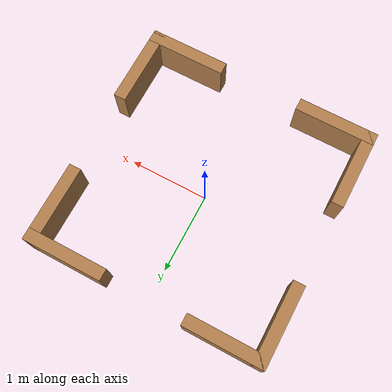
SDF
<?xml version='1.0'?>
<sdf version='1.6'>
  <model name='square_3_x'>
    <pose frame=''>0 0 0 0 -0 0</pose>
    <link name='Wall_0'>
      <collision name='Wall_0_Collision'>
        <geometry>
          <box>
            <size>1 0.15 0.5</size>
          </box>
        </geometry>
        <pose frame=''>0 0 0.25 0 -0 0</pose>
      </collision>
      <visual name='Wall_0_Visual'>
        <pose frame=''>0 0 0.25 0 -0 0</pose>
        <geometry>
          <box>
            <size>1 0.15 0.5</size>
          </box>
        </geometry>
        <material>
          <script>
            <uri>file://media/materials/scripts/gazebo.material</uri>
            <name>Gazebo/Wood</name>
          </script>
          <ambient>1 1 1 1</ambient>
        </material>
      </visual>
      <pose frame=''>-1 1.425 0 0 -0 0</pose>
    </link>
    <link name='Wall_0a'>
      <collision name='Wall_0a_Collision'>
        <geometry>
          <box>
            <size>1 0.15 0.5</size>
          </box>
        </geometry>
        <pose frame=''>0 0 0.25 0 -0 0</pose>
      </collision>
      <visual name='Wall_0a_Visual'>
        <pose frame=''>0 0 0.25 0 -0 0</pose>
        <geometry>
          <box>
            <size>1 0.15 0.5</size>
          </box>
        </geometry>
        <material>
          <script>
            <uri>file://media/materials/scripts/gazebo.material</uri>
            <name>Gazebo/Wood</name>
          </script>
          <ambient>1 1 1 1</ambient>
        </material>
      </visual>
      <pose frame=''>1 1.425 0 0 -0 0</pose>
    </link>

    <link name='Wall_2'>
      <collision name='Wall_2_Collision'>
        <geometry>
          <box>
            <size>1 0.15 0.5</size>
          </box>
        </geometry>
        <pose frame=''>0 0 0.25 0 -0 0</pose>
      </collision>
      <visual name='Wall_2_Visual'>
        <pose frame=''>0 0 0.25 0 -0 0</pose>
        <geometry>
          <box>
            <size>1 0.15 0.5</size>
          </box>
        </geometry>
        <material>
          <script>
            <uri>file://media/materials/scripts/gazebo.material</uri>
            <name>Gazebo/Wood</name>
          </script>
          <ambient>1 1 1 1</ambient>
        </material>
      </visual>
      <pose frame=''>-1.425 -1 0 0 0 -1.5708</pose>
    </link>
    <link name='Wall_2a'>
      <collision name='Wall_2a_Collision'>
        <geometry>
          <box>
            <size>1 0.15 0.5</size>
          </box>
        </geometry>
        <pose frame=''>0 0 0.25 0 -0 0</pose>
      </collision>
      <visual name='Wall_2a_Visual'>
        <pose frame=''>0 0 0.25 0 -0 0</pose>
        <geometry>
          <box>
            <size>1 0.15 0.5</size>
          </box>
        </geometry>
        <material>
          <script>
            <uri>file://media/materials/scripts/gazebo.material</uri>
            <name>Gazebo/Wood</name>
          </script>
          <ambient>1 1 1 1</ambient>
        </material>
      </visual>
      <pose frame=''>-1.425 1 0 0 0 -1.5708</pose>
    </link>

    <link name='Wall_3'>
      <collision name='Wall_3_Collision'>
        <geometry>
          <box>
            <size>1 0.15 0.5</size>
          </box>
        </geometry>
        <pose frame=''>0 0 0.25 0 -0 0</pose>
      </collision>
      <visual name='Wall_3_Visual'>
        <pose frame=''>0 0 0.25 0 -0 0</pose>
        <geometry>
          <box>
            <size>1 0.15 0.5</size>
          </box>
        </geometry>
        <material>
          <script>
            <uri>file://media/materials/scripts/gazebo.material</uri>
            <name>Gazebo/Wood</name>
          </script>
          <ambient>1 1 1 1</ambient>
        </material>
      </visual>
      <pose frame=''>-1 -1.425 0 0 -0 0</pose>
    </link>
    <link name='Wall_3a'>
      <collision name='Wall_3a_Collision'>
        <geometry>
          <box>
            <size>1 0.15 0.5</size>
          </box>
        </geometry>
        <pose frame=''>0 0 0.25 0 -0 0</pose>
      </collision>
      <visual name='Wall_3a_Visual'>
        <pose frame=''>0 0 0.25 0 -0 0</pose>
        <geometry>
          <box>
            <size>1 0.15 0.5</size>
          </box>
        </geometry>
        <material>
          <script>
            <uri>file://media/materials/scripts/gazebo.material</uri>
            <name>Gazebo/Wood</name>
          </script>
          <ambient>1 1 1 1</ambient>
        </material>
      </visual>
      <pose frame=''>1 -1.425 0 0 -0 0</pose>
    </link>

    <link name='Wall_4'>
      <collision name='Wall_4_Collision'>
        <geometry>
          <box>
            <size>1 0.15 0.5</size>
          </box>
        </geometry>
        <pose frame=''>0 0 0.25 0 -0 0</pose>
      </collision>
      <visual name='Wall_4_Visual'>
        <pose frame=''>0 0 0.25 0 -0 0</pose>
        <geometry>
          <box>
            <size>1 0.15 0.5</size>
          </box>
        </geometry>
        <material>
          <script>
            <uri>file://media/materials/scripts/gazebo.material</uri>
            <name>Gazebo/Wood</name>
          </script>
          <ambient>1 1 1 1</ambient>
        </material>
      </visual>
      <pose frame=''>1.425 -1 0 0 -0 1.5708</pose>
    </link>
    <link name='Wall_4a'>
      <collision name='Wall_4a_Collision'>
        <geometry>
          <box>
            <size>1 0.15 0.5</size>
          </box>
        </geometry>
        <pose frame=''>0 0 0.25 0 -0 0</pose>
      </collision>
      <visual name='Wall_4a_Visual'>
        <pose frame=''>0 0 0.25 0 -0 0</pose>
        <geometry>
          <box>
            <size>1 0.15 0.5</size>
          </box>
        </geometry>
        <material>
          <script>
            <uri>file://media/materials/scripts/gazebo.material</uri>
            <name>Gazebo/Wood</name>
          </script>
          <ambient>1 1 1 1</ambient>
        </material>
      </visual>
      <pose frame=''>1.425 1 0 0 -0 1.5708</pose>
    </link>

    <static>1</static>
  </model>
</sdf>
